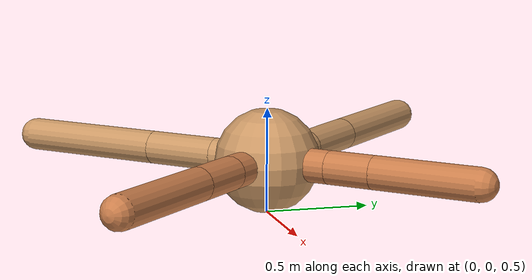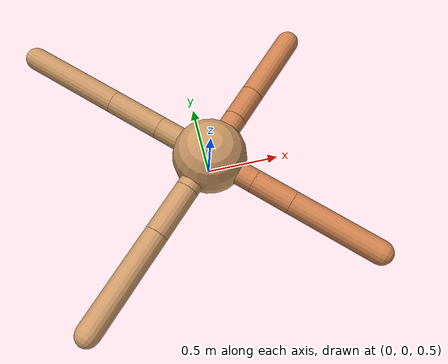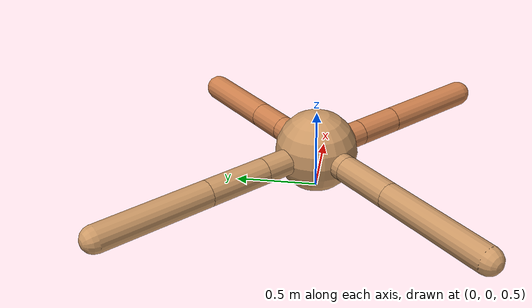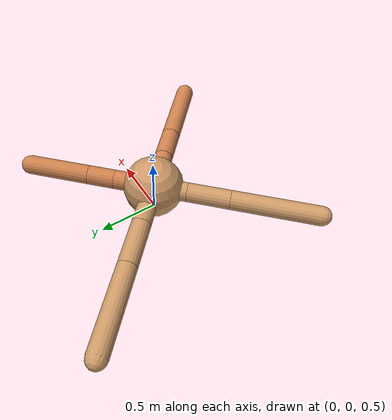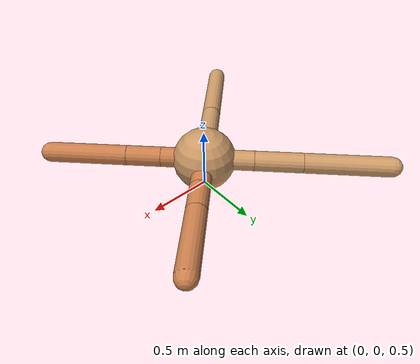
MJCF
<mujoco model="ant">
  <compiler angle="degree" coordinate="local" inertiafromgeom="true" />
  <option integrator="RK4" timestep="0.01" />
  <custom>
    <numeric data="0.0 0.0 0.55 1.0 0.0 0.0 0.0 0.0 1.0 0.0 -1.0 0.0 -1.0 0.0 1.0" name="init_qpos" />
  </custom>
  <default>
    <joint armature="1" damping="1" limited="true" />
    <geom conaffinity="0" condim="3" density="5.0" friction="1.5 0.1 0.1" margin="0.01" rgba="0.8 0.6 0.4 1" />
  </default>
  <worldbody>
    <body name="torso" pos="0 0 0.75">
      <geom name="torso_geom" pos="0 0 0" size="0.25" type="sphere" />

      <body name="front_left_leg" pos="0 0 0">
        <geom fromto="0.0 0.0 0.0 0.23552110876794133 0.23552110876794133 0.0" name="aux_1_geom" size="0.08" type="capsule" rgba=".8 .5 .3 1" />
        <body name="aux_1" pos="0.23552110876794133 0.23552110876794133 0.0">
          <joint axis="0 0 1" name="hip_1" pos="0.0 0.0 0.0" range="-40 40" type="hinge" />
          <geom fromto="0.0 0.0 0.0 0.16066827526379757 0.16066827526379757 0.0" name="left_leg_geom" size="0.08" type="capsule" rgba=".8 .5 .3 1" />
          <body pos="0.16066827526379757 0.16066827526379757 0.0" name="front_left_foot">
            <joint axis="-1 1 0" name="ankle_1" pos="0.0 0.0 0.0" range="30 100" type="hinge" />
            <geom fromto="0.0 0.0 0.0 0.3699441323879531 0.3699441323879531 0.0" name="left_ankle_geom" size="0.08" type="capsule" rgba=".8 .5 .3 1" />
          </body>
        </body>
      </body>
      <body name="front_right_leg" pos="0 0 0">
        <geom fromto="0.0 0.0 0.0 -0.27941170504485524 0.27941170504485524 0.0" name="aux_2_geom" size="0.08" type="capsule" />
        <body name="aux_2" pos="-0.27941170504485524 0.27941170504485524 0.0">
          <joint axis="0 0 1" name="hip_2" pos="0.0 0.0 0.0" range="-40 40" type="hinge" />
          <geom fromto="0.0 0.0 0.0 -0.2696558951027108 0.2696558951027108 0.0" name="right_leg_geom" size="0.08" type="capsule" />
          <body pos="-0.2696558951027108 0.2696558951027108 0.0" name="front_right_foot">
            <joint axis="1 1 0" name="ankle_2" pos="0.0 0.0 0.0" range="-100 -30" type="hinge" />
            <geom fromto="0.0 0.0 0.0 -0.48205657662986634 0.48205657662986634 0.0" name="right_ankle_geom" size="0.08" type="capsule" />
          </body>
        </body>
      </body>
      <body name="left_back_leg" pos="0 0 0">
        <geom fromto="0.0 0.0 0.0 -0.20093934247388454 -0.20093934247388454 0.0" name="aux_3_geom" size="0.08" type="capsule" />
        <body name="aux_3" pos="-0.20093934247388454 -0.20093934247388454 0.0">
          <joint axis="0 0 1" name="hip_3" pos="0.0 0.0 0.0" range="-40 40" type="hinge" />
          <geom fromto="0.0 0.0 0.0 -0.25015965578239197 -0.25015965578239197 0.0" name="back_leg_geom" size="0.08" type="capsule" />
          <body pos="-0.25015965578239197 -0.25015965578239197 0.0" name="left_back_foot">
            <joint axis="-1 1 0" name="ankle_3" pos="0.0 0.0 0.0" range="-100 -30" type="hinge" />
            <geom fromto="0.0 0.0 0.0 -0.5087450267264683 -0.5087450267264683 0.0" name="third_ankle_geom" size="0.08" type="capsule" />
          </body>
        </body>
      </body>
      <body name="right_back_leg" pos="0 0 0">
        <geom fromto="0.0 0.0 0.0 0.24257027818312143 -0.24257027818312143 0.0" name="aux_4_geom" size="0.08" type="capsule" rgba=".8 .5 .3 1" />
        <body name="aux_4" pos="0.24257027818312143 -0.24257027818312143 0.0">
          <joint axis="0 0 1" name="hip_4" pos="0.0 0.0 0.0" range="-40 40" type="hinge" />
          <geom fromto="0.0 0.0 0.0 0.19541731656566227 -0.19541731656566227 0.0" name="rightback_leg_geom" size="0.08" type="capsule" rgba=".8 .5 .3 1" />
          <body pos="0.19541731656566227 -0.19541731656566227 0.0" name="right_back_foot">
            <joint axis="1 1 0" name="ankle_4" pos="0.0 0.0 0.0" range="30 100" type="hinge" />
            <geom fromto="0.0 0.0 0.0 0.43892797085317686 -0.43892797085317686 0.0" name="fourth_ankle_geom" size="0.08" type="capsule" rgba=".8 .5 .3 1" />
          </body>
        </body>
      </body>
    </body>
  </worldbody>
  <actuator>
    <motor ctrllimited="true" ctrlrange="-1.0 1.0" joint="hip_4" gear="150" />
    <motor ctrllimited="true" ctrlrange="-1.0 1.0" joint="ankle_4" gear="150" />
    <motor ctrllimited="true" ctrlrange="-1.0 1.0" joint="hip_1" gear="150" />
    <motor ctrllimited="true" ctrlrange="-1.0 1.0" joint="ankle_1" gear="150" />
    <motor ctrllimited="true" ctrlrange="-1.0 1.0" joint="hip_2" gear="150" />
    <motor ctrllimited="true" ctrlrange="-1.0 1.0" joint="ankle_2" gear="150" />
    <motor ctrllimited="true" ctrlrange="-1.0 1.0" joint="hip_3" gear="150" />
    <motor ctrllimited="true" ctrlrange="-1.0 1.0" joint="ankle_3" gear="150" />
  </actuator>
</mujoco>
